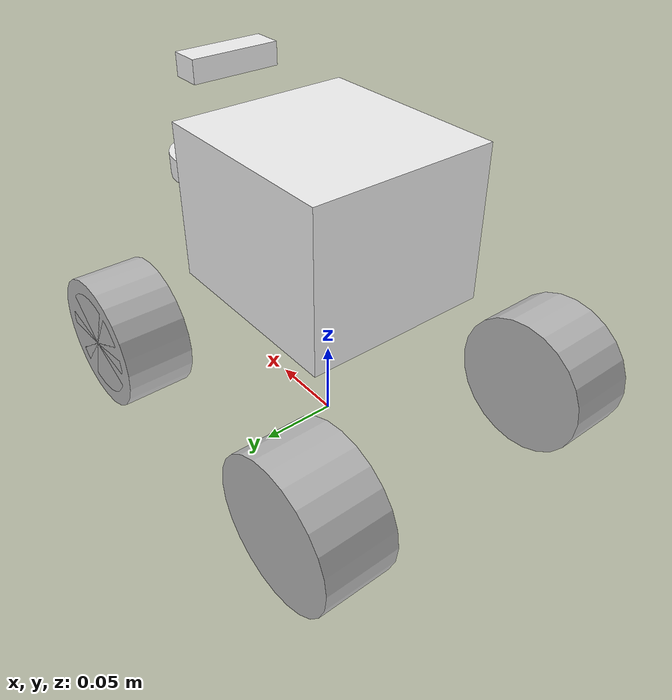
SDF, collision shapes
<sdf version='1.11'>
  <model name='limo_ackermann'>
    <link name='base_footprint'>
      <inertial>
        <pose>0.0094517478970283664 0 0.15190218539967029 0 0 0</pose>
        <mass>2.3656999999999999</mass>
        <inertia>
          <ixx>0.0053584009990348116</ixx>
          <ixy>0</ixy>
          <ixz>-0.0004838671344633721</ixz>
          <iyy>0.0072256517493905978</iyy>
          <iyz>0</iyz>
          <izz>0.0079412390836891122</izz>
        </inertia>
      </inertial>
      <collision name='base_footprint_fixed_joint_lump__base_link_collision'>
        <pose>0 0 0.14999999999999999 0 0 0</pose>
        <geometry>
          <box>
            <size>0.13 0.12 0.10000000000000001</size>
          </box>
        </geometry>
      </collision>
      <collision name='base_footprint_fixed_joint_lump__depth_camera_collision_collision_1'>
        <pose>0.10000000000000001 0 0.215 0 0 0</pose>
        <geometry>
          <box>
            <size>0.02 0.059999999999999998 0.014999999999999999</size>
          </box>
        </geometry>
      </collision>
      <collision name='base_footprint_fixed_joint_lump__imu_collision_collision_2'>
        <pose>0 0 0.049999999999999989 0 0 0</pose>
        <geometry>
          <box>
            <size>0.001 0.001 0.001</size>
          </box>
        </geometry>
      </collision>
      <collision name='base_footprint_fixed_joint_lump__laser_collision_collision_3'>
        <pose>0.1236 0 0.14000000000000001 0 0 0</pose>
        <geometry>
          <cylinder>
            <length>0.016</length>
            <radius>0.032000000000000001</radius>
          </cylinder>
        </geometry>
      </collision>
      <visual name='base_footprint_fixed_joint_lump__base_link_visual'>
        <pose>0 0 0 0 0 1.5700000000000001</pose>
        <geometry>
          <mesh>
            <scale>1 1 1</scale>
            <uri>model://limo_ackermann/meshes/limo_base.dae</uri>
          </mesh>
        </geometry>
      </visual>
      <visual name='base_footprint_fixed_joint_lump__depth_camera_visual_visual_1'>
        <pose>0.10000000000000001 0 0.215 0 0 0</pose>
        <geometry>
          <box>
            <size>0.02 0.059999999999999998 0.014999999999999999</size>
          </box>
        </geometry>
        <material>
          <diffuse>0.9375 0.9375 0.9375 1</diffuse>
          <ambient>0.9375 0.9375 0.9375 1</ambient>
        </material>
      </visual>
      <visual name='base_footprint_fixed_joint_lump__imu_visual_visual_2'>
        <pose>0 0 0.049999999999999989 0 0 0</pose>
        <geometry>
          <box>
            <size>0.001 0.001 0.001</size>
          </box>
        </geometry>
        <material>
          <diffuse>0.9375 0.9375 0.9375 1</diffuse>
          <ambient>0.9375 0.9375 0.9375 1</ambient>
        </material>
      </visual>
      <visual name='base_footprint_fixed_joint_lump__laser_visual_visual_3'>
        <pose>0.1236 0 0.14000000000000001 0 0 0</pose>
        <geometry>
          <cylinder>
            <length>0.01</length>
            <radius>0.02</radius>
          </cylinder>
        </geometry>
        <material>
          <diffuse>1 1 1 1</diffuse>
          <ambient>1 1 1 1</ambient>
        </material>
      </visual>
      <sensor name='depth_camera_rgbd' type='rgbd_camera'>
        <always_on>true</always_on>
        <visualize>true</visualize>
        <update_rate>10</update_rate>
        <topic>rgb/image_raw</topic>
        <camera name='head'>
          <horizontal_fov>1.3962634</horizontal_fov>
          <image>
            <width>640</width>
            <height>480</height>
            <format>R8G8B8</format>
          </image>
          <clip>
            <near>0.14999999999999999</near>
            <far>8</far>
          </clip>
          <camera_info_topic>rgb/camera_info</camera_info_topic>
        </camera>
        <pose>0.10000000000000001 0 0.215 0 0 0</pose>
        <frame_id>depth_camera_frame_optical</frame_id>
        <depth_topic>depth/image_raw</depth_topic>
        <point_cloud_topic>depth/points</point_cloud_topic>
      </sensor>
      <sensor name='imu_imu' type='imu'>
        <always_on>true</always_on>
        <update_rate>100</update_rate>
        <visualize>true</visualize>
        <topic>imu</topic>
        <pose>0 0 0.050000000000000003 0 0 0</pose>
        <imu/>
      </sensor>
      <sensor name='laser_sensor' type='gpu_lidar'>
        <visualize>false</visualize>
        <update_rate>8</update_rate>
        <topic>scan</topic>
        <lidar>
          <scan>
            <horizontal>
              <samples>720</samples>
              <resolution>1</resolution>
              <min_angle>-2.0943950400000002</min_angle>
              <max_angle>2.0943950400000002</max_angle>
            </horizontal>
          </scan>
          <range>
            <min>0.20000000000000001</min>
            <max>8</max>
            <resolution>0.01</resolution>
          </range>
          <noise>
            <type>gaussian</type>
            <mean>0</mean>
            <stddev>0.01</stddev>
          </noise>
        </lidar>
        <pose>0.1236 0 0.14000000000000001 0 0 0</pose>
        <gz_frame_id>laser_link</gz_frame_id>
      </sensor>
    </link>
    <joint name='hinten_left_wheel' type='revolute'>
      <pose relative_to='base_footprint'>-0.10000000000000001 0.070000000000000007 0.04900199999999999 0 0 0</pose>
      <parent>base_footprint</parent>
      <child>hinten_left_wheel_link</child>
      <axis>
        <xyz>0 1 0</xyz>
        <limit>
          <lower>-inf</lower>
          <upper>inf</upper>
        </limit>
        <dynamics>
          <spring_reference>0</spring_reference>
          <spring_stiffness>0</spring_stiffness>
        </dynamics>
      </axis>
    </joint>
    <link name='hinten_left_wheel_link'>
      <pose relative_to='hinten_left_wheel'>0 0 0 0 0 0</pose>
      <inertial>
        <pose>0 0 0 0 0 0</pose>
        <mass>0.5</mass>
        <inertia>
          <ixx>0.00033750000000000002</ixx>
          <ixy>0</ixy>
          <ixz>0</ixz>
          <iyy>0.00033750000000000002</iyy>
          <iyz>0</iyz>
          <izz>0.00050624999999999997</izz>
        </inertia>
      </inertial>
      <collision name='hinten_left_wheel_link_collision'>
        <pose>0 0.022499999999999999 0 1.5700000000000001 0 0</pose>
        <geometry>
          <cylinder>
            <length>0.044999999999999998</length>
            <radius>0.044999999999999998</radius>
          </cylinder>
        </geometry>
      </collision>
      <visual name='hinten_left_wheel_link_visual'>
        <pose>0 0 0 0 0 0</pose>
        <geometry>
          <mesh>
            <scale>1 1 1</scale>
            <uri>model://limo_ackermann/meshes/limo_wheel.dae</uri>
          </mesh>
        </geometry>
      </visual>
    </link>
    <joint name='hinten_right_wheel' type='revolute'>
      <pose relative_to='base_footprint'>-0.10000000000000001 -0.070000000000000007 0.04900199999999999 3.1415899999999999 0 0</pose>
      <parent>base_footprint</parent>
      <child>hinten_right_wheel_link</child>
      <axis>
        <xyz>0 -1 0</xyz>
        <limit>
          <lower>-inf</lower>
          <upper>inf</upper>
        </limit>
        <dynamics>
          <spring_reference>0</spring_reference>
          <spring_stiffness>0</spring_stiffness>
        </dynamics>
      </axis>
    </joint>
    <link name='hinten_right_wheel_link'>
      <pose relative_to='hinten_right_wheel'>0 0 0 0 0 0</pose>
      <inertial>
        <pose>0 0 0 0 0 0</pose>
        <mass>0.5</mass>
        <inertia>
          <ixx>0.00033750000000000002</ixx>
          <ixy>0</ixy>
          <ixz>0</ixz>
          <iyy>0.00033750000000000002</iyy>
          <iyz>0</iyz>
          <izz>0.00050624999999999997</izz>
        </inertia>
      </inertial>
      <collision name='hinten_right_wheel_link_collision'>
        <pose>0 0.022499999999999999 0 1.5700000000000001 0 0</pose>
        <geometry>
          <cylinder>
            <length>0.044999999999999998</length>
            <radius>0.044999999999999998</radius>
          </cylinder>
        </geometry>
      </collision>
      <visual name='hinten_right_wheel_link_visual'>
        <pose>0 0 0 0 0 0</pose>
        <geometry>
          <mesh>
            <scale>1 1 1</scale>
            <uri>model://limo_ackermann/meshes/limo_wheel.dae</uri>
          </mesh>
        </geometry>
      </visual>
    </link>
    <joint name='left_steering_hinge_wheel' type='revolute'>
      <pose relative_to='base_footprint'>0.10000000000000001 0.070000000000000007 0.04900199999999999 0 0 0</pose>
      <parent>base_footprint</parent>
      <child>left_steering_hinge</child>
      <axis>
        <xyz>0 0 1</xyz>
        <limit>
          <lower>-0.52359876699999996</lower>
          <upper>0.52359876699999996</upper>
          <effort>5</effort>
          <velocity>0.5</velocity>
        </limit>
        <dynamics>
          <damping>1</damping>
          <friction>2</friction>
          <spring_reference>0</spring_reference>
          <spring_stiffness>0</spring_stiffness>
        </dynamics>
      </axis>
    </joint>
    <link name='left_steering_hinge'>
      <pose relative_to='left_steering_hinge_wheel'>0 0 0 0 0 0</pose>
      <inertial>
        <pose>0 0 0 0 0 0</pose>
        <mass>0.25</mass>
        <inertia>
          <ixx>0.0052500000000000003</ixx>
          <ixy>0</ixy>
          <ixz>0</ixz>
          <iyy>0.00035</iyy>
          <iyz>0</iyz>
          <izz>0.0052500000000000003</izz>
        </inertia>
      </inertial>
      <collision name='left_steering_hinge_collision'>
        <pose>0 0.022499999999999999 0 1.5700000000000001 0 0</pose>
        <geometry>
          <cylinder>
            <length>0.044999999999999998</length>
            <radius>0.035000000000000003</radius>
          </cylinder>
        </geometry>
      </collision>
      <visual name='left_steering_hinge_visual'>
        <pose>0 0 0 0 0 0</pose>
        <geometry>
          <cylinder>
            <length>0.0001</length>
            <radius>0.0001</radius>
          </cylinder>
        </geometry>
      </visual>
    </link>
    <joint name='front_left_wheel' type='revolute'>
      <pose relative_to='left_steering_hinge'>0 0 0 0 0 0</pose>
      <parent>left_steering_hinge</parent>
      <child>front_left_wheel_link</child>
      <axis>
        <xyz>0 1 0</xyz>
        <limit>
          <lower>-inf</lower>
          <upper>inf</upper>
        </limit>
        <dynamics>
          <spring_reference>0</spring_reference>
          <spring_stiffness>0</spring_stiffness>
        </dynamics>
      </axis>
    </joint>
    <link name='front_left_wheel_link'>
      <pose relative_to='front_left_wheel'>0 0 0 0 0 0</pose>
      <inertial>
        <pose>0 0 0 0 0 0</pose>
        <mass>0.25</mass>
        <inertia>
          <ixx>0.0052500000000000003</ixx>
          <ixy>0</ixy>
          <ixz>0</ixz>
          <iyy>0.00035</iyy>
          <iyz>0</iyz>
          <izz>0.0052500000000000003</izz>
        </inertia>
      </inertial>
      <collision name='front_left_wheel_link_collision'>
        <pose>0 0.022499999999999999 0 1.5700000000000001 0 0</pose>
        <geometry>
          <cylinder>
            <length>0.044999999999999998</length>
            <radius>0.044999999999999998</radius>
          </cylinder>
        </geometry>
      </collision>
      <visual name='front_left_wheel_link_visual'>
        <pose>0 0 0 0 0 0</pose>
        <geometry>
          <mesh>
            <scale>1 1 1</scale>
            <uri>model://limo_ackermann/meshes/limo_wheel.dae</uri>
          </mesh>
        </geometry>
      </visual>
    </link>
    <joint name='right_steering_hinge_wheel' type='revolute'>
      <pose relative_to='base_footprint'>0.10000000000000001 -0.070000000000000007 0.04900199999999999 3.1415899999999999 0 0</pose>
      <parent>base_footprint</parent>
      <child>right_steering_hinge</child>
      <axis>
        <xyz>0 0 -1</xyz>
        <limit>
          <lower>-0.52359876699999996</lower>
          <upper>0.52359876699999996</upper>
          <effort>5</effort>
          <velocity>0.5</velocity>
        </limit>
        <dynamics>
          <damping>1</damping>
          <friction>2</friction>
          <spring_reference>0</spring_reference>
          <spring_stiffness>0</spring_stiffness>
        </dynamics>
      </axis>
    </joint>
    <link name='right_steering_hinge'>
      <pose relative_to='right_steering_hinge_wheel'>0 0 0 0 0 0</pose>
      <inertial>
        <pose>0 0 0 0 0 0</pose>
        <mass>0.25</mass>
        <inertia>
          <ixx>0.0052500000000000003</ixx>
          <ixy>0</ixy>
          <ixz>0</ixz>
          <iyy>0.00035</iyy>
          <iyz>0</iyz>
          <izz>0.0052500000000000003</izz>
        </inertia>
      </inertial>
      <collision name='right_steering_hinge_collision'>
        <pose>0 0.022499999999999999 0 1.5700000000000001 0 0</pose>
        <geometry>
          <cylinder>
            <length>0.044999999999999998</length>
            <radius>0.035000000000000003</radius>
          </cylinder>
        </geometry>
      </collision>
      <visual name='right_steering_hinge_visual'>
        <pose>0 0 0 0 0 0</pose>
        <geometry>
          <cylinder>
            <length>0.0001</length>
            <radius>0.0001</radius>
          </cylinder>
        </geometry>
      </visual>
    </link>
    <joint name='front_right_wheel' type='revolute'>
      <pose relative_to='right_steering_hinge'>0 0 0 0 0 0</pose>
      <parent>right_steering_hinge</parent>
      <child>front_right_wheel_link</child>
      <axis>
        <xyz>0 -1 0</xyz>
        <limit>
          <lower>-inf</lower>
          <upper>inf</upper>
        </limit>
        <dynamics>
          <spring_reference>0</spring_reference>
          <spring_stiffness>0</spring_stiffness>
        </dynamics>
      </axis>
    </joint>
    <link name='front_right_wheel_link'>
      <pose relative_to='front_right_wheel'>0 0 0 0 0 0</pose>
      <inertial>
        <pose>0 0 0 0 0 0</pose>
        <mass>0.25</mass>
        <inertia>
          <ixx>0.0052500000000000003</ixx>
          <ixy>0</ixy>
          <ixz>0</ixz>
          <iyy>0.00035</iyy>
          <iyz>0</iyz>
          <izz>0.0052500000000000003</izz>
        </inertia>
      </inertial>
      <collision name='front_right_wheel_link_collision'>
        <pose>0 0.022499999999999999 0 1.5700000000000001 0 0</pose>
        <geometry>
          <cylinder>
            <length>0.044999999999999998</length>
            <radius>0.044999999999999998</radius>
          </cylinder>
        </geometry>
      </collision>
      <visual name='front_right_wheel_link_visual'>
        <pose>0 0 0 0 0 0</pose>
        <geometry>
          <mesh>
            <scale>1 1 1</scale>
            <uri>model://limo_ackermann/meshes/limo_wheel.dae</uri>
          </mesh>
        </geometry>
      </visual>
    </link>
    <plugin name='gz::sim::systems::Sensors' filename='gz-sim-sensors-system'>
      <render_engine>ogre2</render_engine>
    </plugin>
    <plugin name='gz::sim::systems::Imu' filename='gz-sim-imu-system'/>
    <plugin name='gz::sim::systems::AckermannSteering' filename='gz-sim-ackermann-steering-system'>
      <left_joint>hinten_left_wheel</left_joint>
      <right_joint>hinten_right_wheel</right_joint>
      <left_steering_joint>left_steering_hinge_wheel</left_steering_joint>
      <right_steering_joint>right_steering_hinge_wheel</right_steering_joint>
      <wheel_radius>0.045</wheel_radius>
      <wheel_base>0.20</wheel_base>
      <wheel_separation>0.14</wheel_separation>
      <steering_limit>0.6</steering_limit>
      <frame_id>odom</frame_id>
      <child_frame_id>base_footprint</child_frame_id>
    </plugin>
    <frame name='depth_camera_to_camera_joint' attached_to='depth_camera_link'>
      <pose>0 0 0 -1.5707959999999999 0 -1.5707959999999999</pose>
    </frame>
    <frame name='depth_link' attached_to='depth_camera_to_camera_joint'>
      <pose>0 0 0 0 0 0</pose>
    </frame>
    <frame name='depth_camera_joint' attached_to='base_link'>
      <pose>0.10000000000000001 0 0.065000000000000002 0 0 0</pose>
    </frame>
    <frame name='depth_camera_link' attached_to='depth_camera_joint'>
      <pose>0 0 0 0 0 0</pose>
    </frame>
    <frame name='imu_joint' attached_to='base_link'>
      <pose>0 0 -0.10000000000000001 0 0 0</pose>
    </frame>
    <frame name='imu_link' attached_to='imu_joint'>
      <pose>0 0 0 0 0 0</pose>
    </frame>
    <frame name='laser_joint' attached_to='base_link'>
      <pose>0.1236 0 -0.01 0 0 0</pose>
    </frame>
    <frame name='laser_link' attached_to='laser_joint'>
      <pose>0 0 0 0 0 0</pose>
    </frame>
    <frame name='base_joint' attached_to='base_footprint'>
      <pose>0 0 0.14999999999999999 0 0 0</pose>
    </frame>
    <frame name='base_link' attached_to='base_joint'>
      <pose>0 0 0 0 0 0</pose>
    </frame>
  </model>
</sdf>
